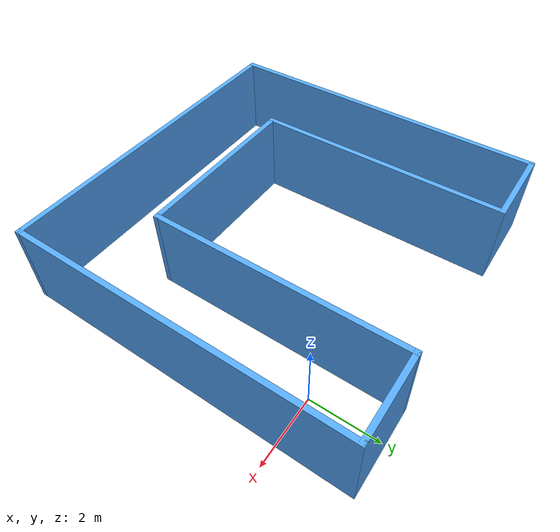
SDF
<?xml version='1.0'?>
<sdf version='1.6'>
  <model name='basic_ushaped_building'>
    <pose frame=''>-3.57399 -2.91898 0 0 -0 0</pose>
    <link name='Wall_33'>
      <collision name='Wall_33_Collision'>
        <geometry>
          <box>
            <size>2.5 0.15 2.5</size>
          </box>
        </geometry>
        <pose frame=''>0 0 1.25 0 -0 0</pose>
      </collision>
      <visual name='Wall_33_Visual'>
        <pose frame=''>0 0 1.25 0 -0 0</pose>
        <geometry>
          <box>
            <size>2.5 0.15 2.5</size>
          </box>
        </geometry>
        <material>
          <script>
            <uri>file://media/materials/scripts/gazebo.material</uri>
            <name>Gazebo/Grey</name>
          </script>
          <ambient>0.333333 0.666667 1 1</ambient>
        </material>
      </visual>
      <pose frame=''>3.75 4.925 0 0 -0 3.14158</pose>
    </link>
    <link name='Wall_35'>
      <collision name='Wall_35_Collision'>
        <geometry>
          <box>
            <size>10 0.15 2.5</size>
          </box>
        </geometry>
        <pose frame=''>0 0 1.25 0 -0 0</pose>
      </collision>
      <visual name='Wall_35_Visual'>
        <pose frame=''>0 0 1.25 0 -0 0</pose>
        <geometry>
          <box>
            <size>10 0.15 2.5</size>
          </box>
        </geometry>
        <material>
          <script>
            <uri>file://media/materials/scripts/gazebo.material</uri>
            <name>Gazebo/Grey</name>
          </script>
          <ambient>0.333333 0.666667 1 1</ambient>
        </material>
      </visual>
      <pose frame=''>4.92499 -2e-05 0 0 0 -1.5708</pose>
    </link>
    <link name='Wall_37'>
      <collision name='Wall_37_Collision'>
        <geometry>
          <box>
            <size>10 0.15 2.5</size>
          </box>
        </geometry>
        <pose frame=''>0 0 1.25 0 -0 0</pose>
      </collision>
      <visual name='Wall_37_Visual'>
        <pose frame=''>0 0 1.25 0 -0 0</pose>
        <geometry>
          <box>
            <size>10 0.15 2.5</size>
          </box>
        </geometry>
        <material>
          <script>
            <uri>file://media/materials/scripts/gazebo.material</uri>
            <name>Gazebo/Grey</name>
          </script>
          <ambient>0.333333 0.666667 1 1</ambient>
        </material>
      </visual>
      <pose frame=''>-5e-06 -4.92502 0 0 -0 3.14159</pose>
    </link>
    <link name='Wall_38'>
      <collision name='Wall_38_Collision'>
        <geometry>
          <box>
            <size>10 0.15 2.5</size>
          </box>
        </geometry>
        <pose frame=''>0 0 1.25 0 -0 0</pose>
      </collision>
      <visual name='Wall_38_Visual'>
        <pose frame=''>0 0 1.25 0 -0 0</pose>
        <geometry>
          <box>
            <size>10 0.15 2.5</size>
          </box>
        </geometry>
        <material>
          <script>
            <uri>file://media/materials/scripts/gazebo.material</uri>
            <name>Gazebo/Grey</name>
          </script>
          <ambient>0.333333 0.666667 1 1</ambient>
        </material>
      </visual>
      <pose frame=''>-4.925 -2e-05 0 0 -0 1.5708</pose>
    </link>
    <link name='Wall_39'>
      <collision name='Wall_39_Collision'>
        <geometry>
          <box>
            <size>2.5 0.15 2.5</size>
          </box>
        </geometry>
        <pose frame=''>0 0 1.25 0 -0 0</pose>
      </collision>
      <visual name='Wall_39_Visual'>
        <pose frame=''>0 0 1.25 0 -0 0</pose>
        <geometry>
          <box>
            <size>2.5 0.15 2.5</size>
          </box>
        </geometry>
        <material>
          <script>
            <uri>file://media/materials/scripts/gazebo.material</uri>
            <name>Gazebo/Grey</name>
          </script>
          <ambient>0.333333 0.666667 1 1</ambient>
        </material>
      </visual>
      <pose frame=''>-3.75 4.92498 0 0 -0 0</pose>
    </link>
    <link name='Wall_40'>
      <collision name='Wall_40_Collision'>
        <geometry>
          <box>
            <size>7.5 0.15 2.5</size>
          </box>
        </geometry>
        <pose frame=''>0 0 1.25 0 -0 0</pose>
      </collision>
      <visual name='Wall_40_Visual'>
        <pose frame=''>0 0 1.25 0 -0 0</pose>
        <geometry>
          <box>
            <size>7.5 0.15 2.5</size>
          </box>
        </geometry>
        <material>
          <script>
            <uri>file://media/materials/scripts/gazebo.material</uri>
            <name>Gazebo/Grey</name>
          </script>
          <ambient>0.333333 0.666667 1 1</ambient>
        </material>
      </visual>
      <pose frame=''>-2.57501 1.24998 0 0 0 -1.5708</pose>
    </link>
    <link name='Wall_42'>
      <collision name='Wall_42_Collision'>
        <geometry>
          <box>
            <size>7.5 0.15 2.5</size>
          </box>
        </geometry>
        <pose frame=''>0 0 1.25 0 -0 0</pose>
      </collision>
      <visual name='Wall_42_Visual'>
        <pose frame=''>0 0 1.25 0 -0 0</pose>
        <geometry>
          <box>
            <size>7.5 0.15 2.5</size>
          </box>
        </geometry>
        <material>
          <script>
            <uri>file://media/materials/scripts/gazebo.material</uri>
            <name>Gazebo/Grey</name>
          </script>
          <ambient>0.333333 0.666667 1 1</ambient>
        </material>
      </visual>
      <pose frame=''>2.57502 1.25002 0 0 0 -1.5708</pose>
    </link>
    <link name='Wall_43'>
      <collision name='Wall_43_Collision'>
        <geometry>
          <box>
            <size>5.30002 0.15 2.5</size>
          </box>
        </geometry>
        <pose frame=''>0 0 1.25 0 -0 0</pose>
      </collision>
      <visual name='Wall_43_Visual'>
        <pose frame=''>0 0 1.25 0 -0 0</pose>
        <geometry>
          <box>
            <size>5.30002 0.15 2.5</size>
          </box>
        </geometry>
        <material>
          <script>
            <uri>file://media/materials/scripts/gazebo.material</uri>
            <name>Gazebo/Grey</name>
          </script>
          <ambient>0.333333 0.666667 1 1</ambient>
        </material>
      </visual>
      <pose frame=''>5e-06 -2.425 0 0 0 -3.14159</pose>
    </link>
    <static>1</static>
  </model>
</sdf>
